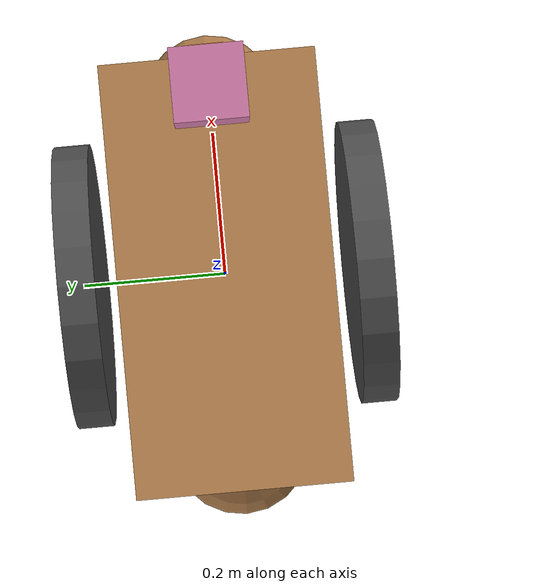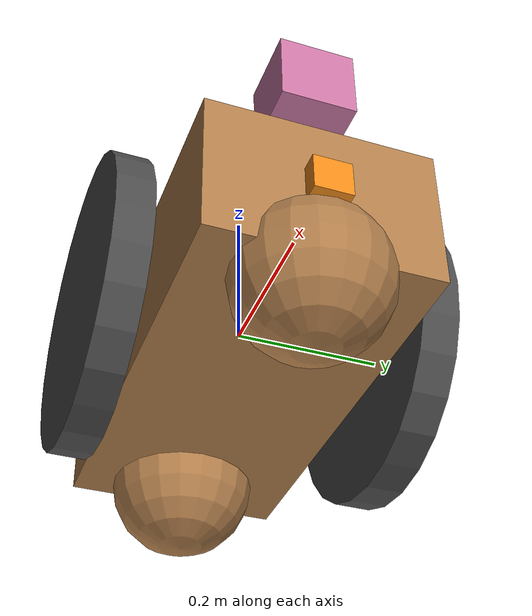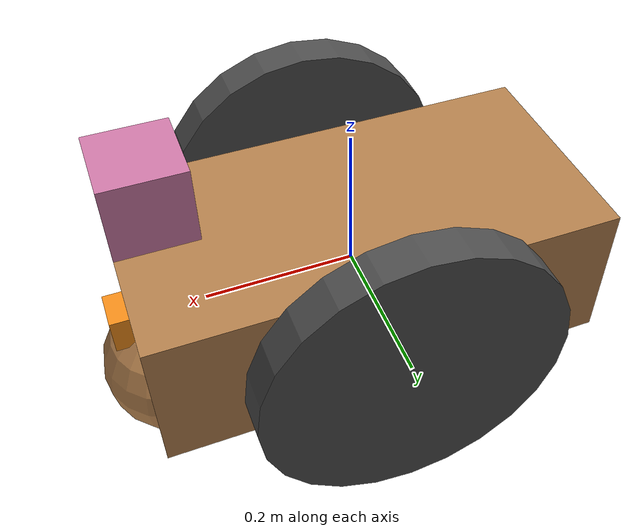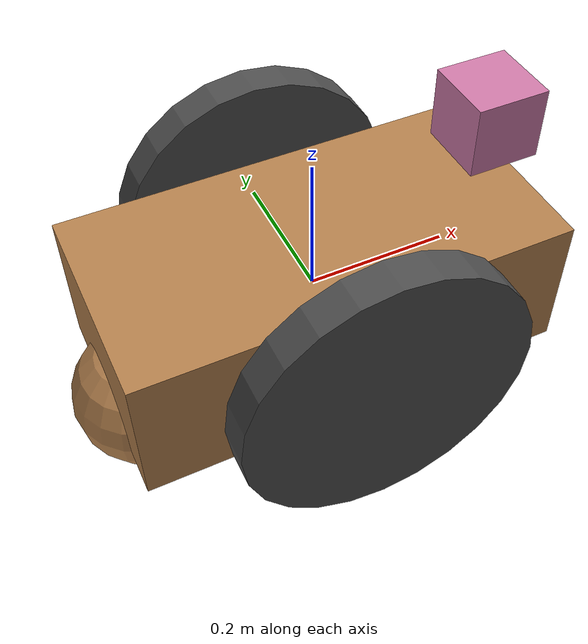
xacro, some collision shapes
<?xml version='1.0'?>

<robot name="my_robot" xmlns:xacro="http://www.ros.org/wiki/xacro">

    <xacro:include filename="$(find my_robot)/urdf/my_robot.gazebo"/>

    <link name="robot_footprint"></link>

    <joint name="robot_footprint_joint" type="fixed">
        <origin xyz="0 0 0" rpy="0 0 0"/>
        <parent link="robot_footprint"/>
        <child link="chassis"/>
    </joint>

    <link name='chassis'>
        <pose>0 0 0.1 0 0 0</pose>

        <inertial>
            <mass value="15.0"/>
            <origin xyz="0.0 0 0" rpy=" 0 0 0"/>
            <inertia
                    ixx="0.1" ixy="0" ixz="0"
                    iyy="0.1" iyz="0"
                    izz="0.1"
            />
        </inertial>

        <collision name='collision'>
            <origin xyz="0 0 0" rpy=" 0 0 0"/>
            <geometry>
                <box size=".6 .3 .2"/>
            </geometry>
        </collision>

        <visual name='chassis_visual'>
            <origin xyz="0 0 0" rpy=" 0 0 0"/>
            <geometry>
                <box size=".6 .3 .2"/>
            </geometry>
        </visual>

        <collision name='back_caster_collision'>
            <origin xyz="-0.25 0 -0.1" rpy=" 0 0 0"/>
            <geometry>
                <sphere radius="0.0999"/>
            </geometry>
        </collision>

        <visual name='back_caster_visual'>
            <origin xyz="-0.25 0 -0.1" rpy=" 0 0 0"/>
            <geometry>
                <sphere radius="0.1"/>
            </geometry>
        </visual>

        <collision name='front_caster_collision'>
            <origin xyz="0.25 0 -0.1" rpy=" 0 0 0"/>
            <geometry>
                <sphere radius="0.0999"/>
            </geometry>
        </collision>

        <visual name='front_caster_visual'>
            <origin xyz="0.25 0 -0.1" rpy=" 0 0 0"/>
            <geometry>
                <sphere radius="0.1"/>
            </geometry>
        </visual>

    </link> <!-- end of chassis -->

    <link name='left_wheel'>
        <inertial>
            <mass value="5.0"/>
            <origin xyz="0 0 0" rpy=" 0 1.5707 1.5707"/>
            <inertia
                    ixx="0.1" ixy="0" ixz="0"
                    iyy="0.1" iyz="0"
                    izz="0.1"
            />
        </inertial>
        <collision name='left_wheel_collision'>
            <origin xyz="0 0 0" rpy=" 0 1.5707 1.5707"/>
            <geometry>
                <cylinder radius="0.2" length="0.05"/>
            </geometry>
        </collision>
        <visual name='left_wheel_visual'>
            <origin xyz="0 0 0" rpy=" 0 1.5707 1.5707"/>
            <geometry>
                <cylinder radius="0.2" length="0.05"/>
            </geometry>
        </visual>
    </link> <!-- end of left_wheel link -->

    <joint type="continuous" name="left_wheel_hinge">
        <origin xyz="0 0.2 0" rpy="0 0 0"/>
        <child link="left_wheel"/>
        <parent link="chassis"/>
        <axis xyz="0 1 0" rpy="0 0 0"/>
        <limit effort="10000" velocity="1000"/>
        <dynamics damping="1.0" friction="1.0"/>
    </joint>

    <link name='right_wheel'>
        <inertial>
            <mass value="5.0"/>
            <origin xyz="0 0 0" rpy=" 0 1.5707 1.5707"/>
            <inertia
                    ixx="0.1" ixy="0" ixz="0"
                    iyy="0.1" iyz="0"
                    izz="0.1"
            />
        </inertial>
        <collision name='right_wheel_collision'>
            <origin xyz="0 0 0" rpy=" 0 1.5707 1.5707"/>
            <geometry>
                <cylinder radius="0.2" length="0.05"/>
            </geometry>
        </collision>
        <visual name='right_wheel_visual'>
            <origin xyz="0 0 0" rpy=" 0 1.5707 1.5707"/>
            <geometry>
                <cylinder radius="0.2" length="0.05"/>
            </geometry>
        </visual>
    </link> <!-- end of right_wheel link -->

    <joint type="continuous" name="right_wheel_hinge">
        <origin xyz="0 -0.2 0" rpy="0 0 0"/>
        <child link="right_wheel"/>
        <parent link="chassis"/>
        <axis xyz="0 1 0" rpy="0 0 0"/>
        <limit effort="10000" velocity="1000"/>
        <dynamics damping="1.0" friction="1.0"/>
    </joint>

    <!-- Camera link -->
    <link name='camera'>
        <box_inertia m="0.1" x="0.05" y="0.05" z="0.05"/>
        <collision name='camera_collision'>
            <origin xyz="0 0 0" rpy=" 0 0 0"/>
            <geometry>
                <box size=".05 .05 .05"/>
            </geometry>
        </collision>
        <visual name='camera_visual'>
            <origin xyz="0 0 0" rpy=" 0 0 0"/>
            <geometry>
                <box size=".05 .05 .05"/>
            </geometry>
        </visual>
    </link> <!-- end of camera link -->

    <joint type="fixed" name="camera_joint">
        <origin xyz="0.3 0 0" rpy="0 0 0"/>
        <child link="camera"/>
        <parent link="chassis"/>
        <axis xyz="0 1 0" rpy="0 0 0"/>
    </joint>

    <!-- RGBD Camera Link -->
    <joint name="camera_optical_joint" type="fixed">
        <origin xyz="0 0 0" rpy="-1.5707 0 -1.5707"/>
        <parent link="camera"/>
        <child link="camera_link_optical"/>
    </joint>

    <link name="camera_link_optical">
    </link>

    <!-- LIDAR / Hokuyo link -->
    <link name='hokuyo'>
        <inertial>
            <mass value="1e-5"/>
            <origin xyz="0 0 0" rpy=" 0 0 0"/>
            <inertia ixx="1e-6" ixy="0" ixz="0" iyy="1e-6" iyz="0" izz="1e-6"/>
        </inertial>
        <collision name='hokuyo_collision'>
            <origin xyz="0 0 0" rpy=" 0 0 0"/>
            <geometry>
                <box size=".1 .1 .1"/>
            </geometry>
        </collision>
        <visual name='hokuyo_visual'>
            <origin xyz="0 0 0" rpy=" 0 0 0"/>
            <geometry>
                <mesh filename="package://my_robot/meshes/hokuyo.dae"/>
            </geometry>
        </visual>
    </link> <!-- end of hokuyo link -->

    <joint type="fixed" name="hokuyo_joint">
        <origin xyz="0.25 0 0.2" rpy="0 0 0"/>
        <child link="hokuyo"/>
        <parent link="chassis"/>
        <axis xyz="0 1 0" rpy="0 0 0"/>
    </joint>

    <!-- Add colors -->
    <gazebo reference="left_wheel">
        <material>Gazebo/DarkGrey</material>
    </gazebo>
    <gazebo reference="right_wheel">
        <material>Gazebo/DarkGrey</material>
    </gazebo>
    <gazebo reference="chassis">
        <material>Gazebo/Wood</material>
    </gazebo>
    <gazebo reference="camera">
        <material>Gazebo/Orange</material>
    </gazebo>

</robot>
